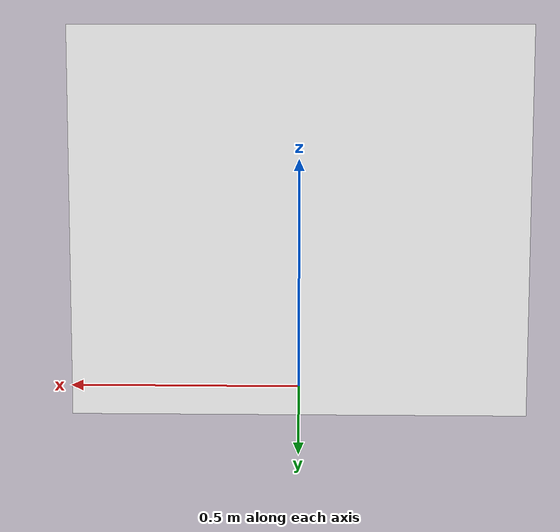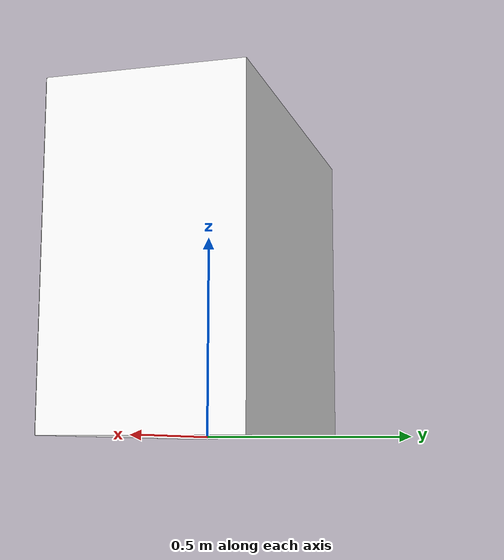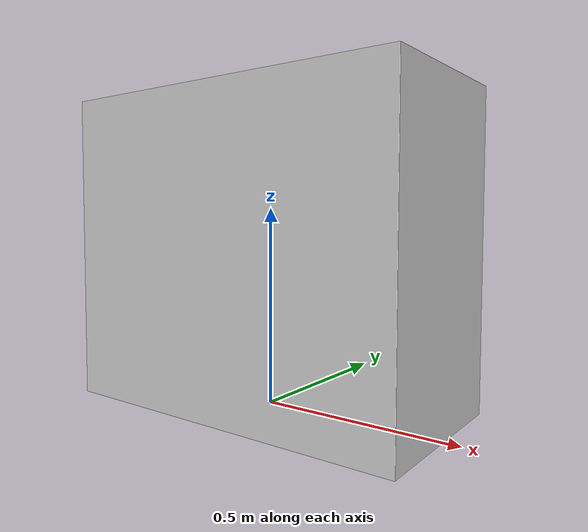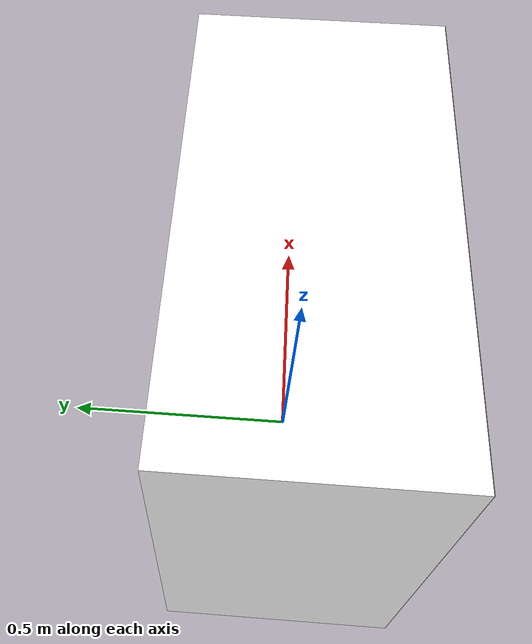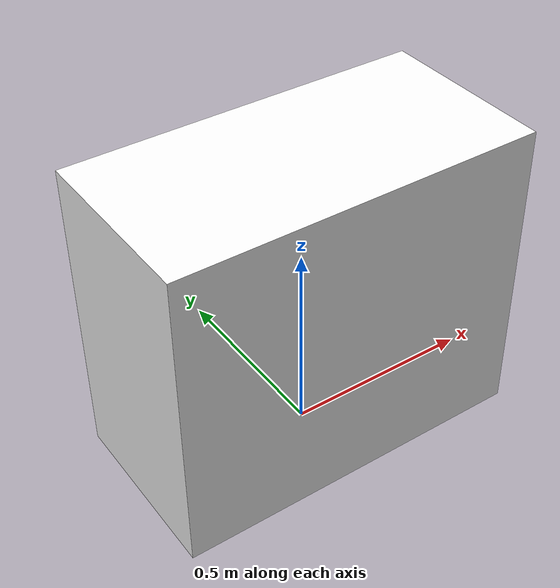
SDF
<?xml version="1.0" ?>
<sdf version='1.4'>
  <model name="fetchit_table_theconstruct">
      <static>1</static>
      <link name='link'>
        <inertial>
          <mass>0.0592855</mass>
          <inertia>
            <ixx>2.31818050784e-05</ixx>
            <ixy>0.000000</ixy>
            <ixz>0.000000</ixz>
            <iyy>2.31851837098e-05</iyy>
            <iyz>0.000000</iyz>
            <izz>8.88944636856e-06</izz>
          </inertia>
        </inertial>
        <collision name='collision'>
          <geometry>
            <mesh>
              <uri>model://fetchit_table_theconstruct/meshes/simple_table.stl</uri>
              <scale>1 1 1</scale>
            </mesh>
          </geometry>
          <surface>
            <friction>
              <ode>
                <mu>30.0</mu>
                <mu2>30.0</mu2>
              </ode>
            </friction>
          </surface>
        </collision>
        <visual name='visual'>
          <geometry>
            <mesh>
              <uri>model://fetchit_table_theconstruct/meshes/table_theconstruct.dae</uri>
              <scale>1 1 1</scale>
            </mesh>
          </geometry>
        </visual>
        <velocity_decay>
          <linear>0.000000</linear>
          <angular>0.000000</angular>
        </velocity_decay>
        <self_collide>0</self_collide>
        <kinematic>0</kinematic>
        <gravity>1</gravity>
      </link>
  </model>
</sdf>
